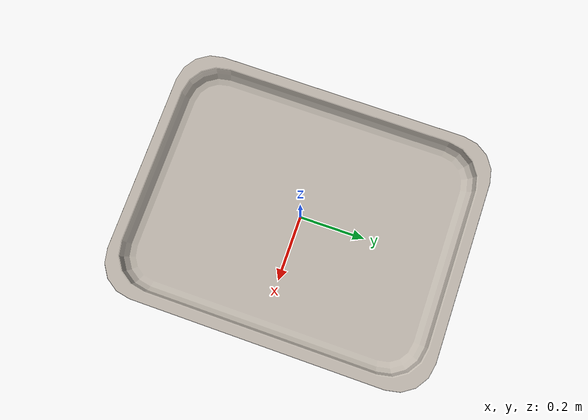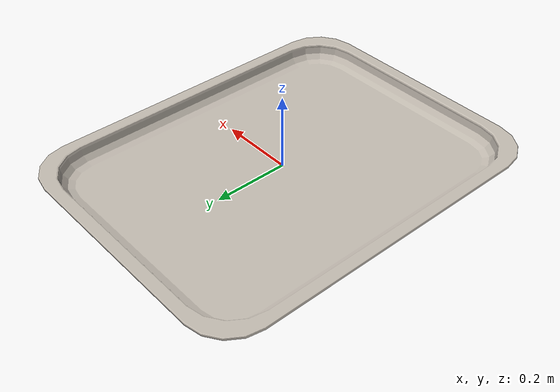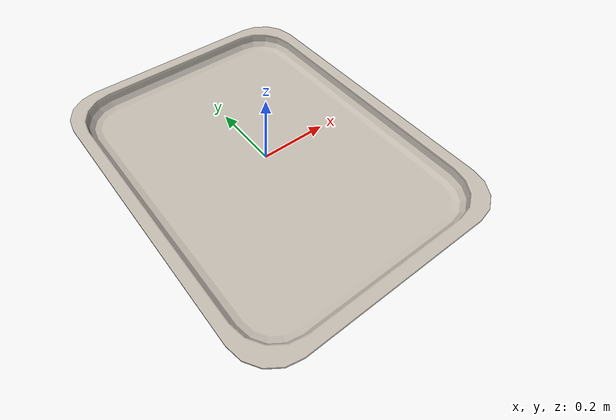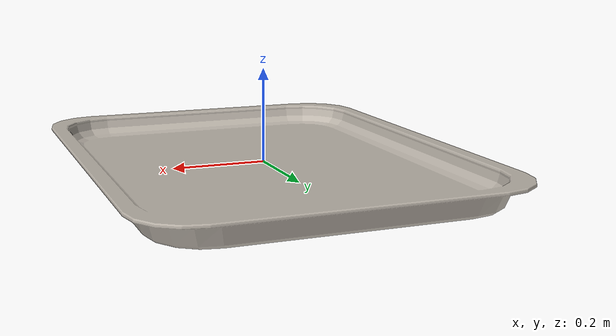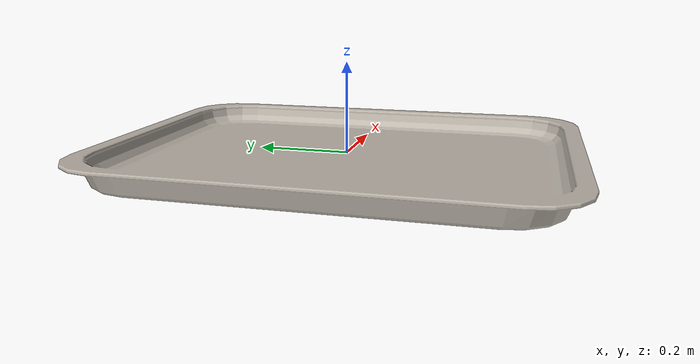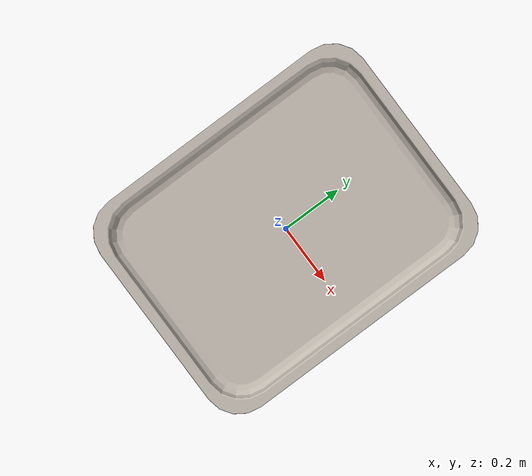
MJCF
<mujoco model="metal_tray">
  <asset>
  <texture file="visual/ceramic.png" name="tex-metal_tray" type="2d" />
  <material name="metal_tray" reflectance="0.5" texrepeat="1 1" texture="tex-metal_tray" texuniform="false" />
  <mesh file="visual/model_normalized_0.obj" name="model_normalized_0_vis" scale="1.0 1.0 1.0" /><mesh file="collision/model_normalized_collision_22.obj" name="model_normalized_collision_22._coll" scale="1.0 1.0 1.0" /><mesh file="collision/model_normalized_collision_23.obj" name="model_normalized_collision_23._coll" scale="1.0 1.0 1.0" /><mesh file="collision/model_normalized_collision_21.obj" name="model_normalized_collision_21._coll" scale="1.0 1.0 1.0" /><mesh file="collision/model_normalized_collision_20.obj" name="model_normalized_collision_20._coll" scale="1.0 1.0 1.0" /><mesh file="collision/model_normalized_collision_24.obj" name="model_normalized_collision_24._coll" scale="1.0 1.0 1.0" /><mesh file="collision/model_normalized_collision_30.obj" name="model_normalized_collision_30._coll" scale="1.0 1.0 1.0" /><mesh file="collision/model_normalized_collision_18.obj" name="model_normalized_collision_18._coll" scale="1.0 1.0 1.0" /><mesh file="collision/model_normalized_collision_19.obj" name="model_normalized_collision_19._coll" scale="1.0 1.0 1.0" /><mesh file="collision/model_normalized_collision_31.obj" name="model_normalized_collision_31._coll" scale="1.0 1.0 1.0" /><mesh file="collision/model_normalized_collision_25.obj" name="model_normalized_collision_25._coll" scale="1.0 1.0 1.0" /><mesh file="collision/model_normalized_collision_27.obj" name="model_normalized_collision_27._coll" scale="1.0 1.0 1.0" /><mesh file="collision/model_normalized_collision_26.obj" name="model_normalized_collision_26._coll" scale="1.0 1.0 1.0" /><mesh file="collision/model_normalized_collision_9.obj" name="model_normalized_collision_9._coll" scale="1.0 1.0 1.0" /><mesh file="collision/model_normalized_collision_8.obj" name="model_normalized_collision_8._coll" scale="1.0 1.0 1.0" /><mesh file="collision/model_normalized_collision_6.obj" name="model_normalized_collision_6._coll" scale="1.0 1.0 1.0" /><mesh file="collision/model_normalized_collision_7.obj" name="model_normalized_collision_7._coll" scale="1.0 1.0 1.0" /><mesh file="collision/model_normalized_collision_5.obj" name="model_normalized_collision_5._coll" scale="1.0 1.0 1.0" /><mesh file="collision/model_normalized_collision_4.obj" name="model_normalized_collision_4._coll" scale="1.0 1.0 1.0" /><mesh file="collision/model_normalized_collision_0.obj" name="model_normalized_collision_0._coll" scale="1.0 1.0 1.0" /><mesh file="collision/model_normalized_collision_1.obj" name="model_normalized_collision_1._coll" scale="1.0 1.0 1.0" /><mesh file="collision/model_normalized_collision_3.obj" name="model_normalized_collision_3._coll" scale="1.0 1.0 1.0" /><mesh file="collision/model_normalized_collision_2.obj" name="model_normalized_collision_2._coll" scale="1.0 1.0 1.0" /><mesh file="collision/model_normalized_collision_17.obj" name="model_normalized_collision_17._coll" scale="1.0 1.0 1.0" /><mesh file="collision/model_normalized_collision_16.obj" name="model_normalized_collision_16._coll" scale="1.0 1.0 1.0" /><mesh file="collision/model_normalized_collision_28.obj" name="model_normalized_collision_28._coll" scale="1.0 1.0 1.0" /><mesh file="collision/model_normalized_collision_14.obj" name="model_normalized_collision_14._coll" scale="1.0 1.0 1.0" /><mesh file="collision/model_normalized_collision_15.obj" name="model_normalized_collision_15._coll" scale="1.0 1.0 1.0" /><mesh file="collision/model_normalized_collision_29.obj" name="model_normalized_collision_29._coll" scale="1.0 1.0 1.0" /><mesh file="collision/model_normalized_collision_11.obj" name="model_normalized_collision_11._coll" scale="1.0 1.0 1.0" /><mesh file="collision/model_normalized_collision_10.obj" name="model_normalized_collision_10._coll" scale="1.0 1.0 1.0" /><mesh file="collision/model_normalized_collision_12.obj" name="model_normalized_collision_12._coll" scale="1.0 1.0 1.0" /><mesh file="collision/model_normalized_collision_13.obj" name="model_normalized_collision_13._coll" scale="1.0 1.0 1.0" /><texture type="2d" name="material_0" file="visual/material_0.png" /><material name="material_0" texture="material_0" specular="0.4000000000000001" shininess="0.001" /></asset>
  <worldbody>
    <body>
      <body name="object">
      <geom solimp="0.998 0.998 0.001" solref="0.001 1" density="100" friction="0.95 0.3 0.1" type="mesh" mesh="model_normalized_0_vis" conaffinity="0" contype="0" group="1" material="material_0" /><geom solimp="0.998 0.998 0.001" solref="0.001 1" density="100" friction="0.95 0.3 0.1" type="mesh" mesh="model_normalized_collision_22._coll" group="0" rgba="0.8 0.8 0.8 0.0" /><geom solimp="0.998 0.998 0.001" solref="0.001 1" density="100" friction="0.95 0.3 0.1" type="mesh" mesh="model_normalized_collision_23._coll" group="0" rgba="0.8 0.8 0.8 0.0" /><geom solimp="0.998 0.998 0.001" solref="0.001 1" density="100" friction="0.95 0.3 0.1" type="mesh" mesh="model_normalized_collision_21._coll" group="0" rgba="0.8 0.8 0.8 0.0" /><geom solimp="0.998 0.998 0.001" solref="0.001 1" density="100" friction="0.95 0.3 0.1" type="mesh" mesh="model_normalized_collision_20._coll" group="0" rgba="0.8 0.8 0.8 0.0" /><geom solimp="0.998 0.998 0.001" solref="0.001 1" density="100" friction="0.95 0.3 0.1" type="mesh" mesh="model_normalized_collision_24._coll" group="0" rgba="0.8 0.8 0.8 0.0" /><geom solimp="0.998 0.998 0.001" solref="0.001 1" density="100" friction="0.95 0.3 0.1" type="mesh" mesh="model_normalized_collision_30._coll" group="0" rgba="0.8 0.8 0.8 0.0" /><geom solimp="0.998 0.998 0.001" solref="0.001 1" density="100" friction="0.95 0.3 0.1" type="mesh" mesh="model_normalized_collision_18._coll" group="0" rgba="0.8 0.8 0.8 0.0" /><geom solimp="0.998 0.998 0.001" solref="0.001 1" density="100" friction="0.95 0.3 0.1" type="mesh" mesh="model_normalized_collision_19._coll" group="0" rgba="0.8 0.8 0.8 0.0" /><geom solimp="0.998 0.998 0.001" solref="0.001 1" density="100" friction="0.95 0.3 0.1" type="mesh" mesh="model_normalized_collision_31._coll" group="0" rgba="0.8 0.8 0.8 0.0" /><geom solimp="0.998 0.998 0.001" solref="0.001 1" density="100" friction="0.95 0.3 0.1" type="mesh" mesh="model_normalized_collision_25._coll" group="0" rgba="0.8 0.8 0.8 0.0" /><geom solimp="0.998 0.998 0.001" solref="0.001 1" density="100" friction="0.95 0.3 0.1" type="mesh" mesh="model_normalized_collision_27._coll" group="0" rgba="0.8 0.8 0.8 0.0" /><geom solimp="0.998 0.998 0.001" solref="0.001 1" density="100" friction="0.95 0.3 0.1" type="mesh" mesh="model_normalized_collision_26._coll" group="0" rgba="0.8 0.8 0.8 0.0" /><geom solimp="0.998 0.998 0.001" solref="0.001 1" density="100" friction="0.95 0.3 0.1" type="mesh" mesh="model_normalized_collision_9._coll" group="0" rgba="0.8 0.8 0.8 0.0" /><geom solimp="0.998 0.998 0.001" solref="0.001 1" density="100" friction="0.95 0.3 0.1" type="mesh" mesh="model_normalized_collision_8._coll" group="0" rgba="0.8 0.8 0.8 0.0" /><geom solimp="0.998 0.998 0.001" solref="0.001 1" density="100" friction="0.95 0.3 0.1" type="mesh" mesh="model_normalized_collision_6._coll" group="0" rgba="0.8 0.8 0.8 0.0" /><geom solimp="0.998 0.998 0.001" solref="0.001 1" density="100" friction="0.95 0.3 0.1" type="mesh" mesh="model_normalized_collision_7._coll" group="0" rgba="0.8 0.8 0.8 0.0" /><geom solimp="0.998 0.998 0.001" solref="0.001 1" density="100" friction="0.95 0.3 0.1" type="mesh" mesh="model_normalized_collision_5._coll" group="0" rgba="0.8 0.8 0.8 0.0" /><geom solimp="0.998 0.998 0.001" solref="0.001 1" density="100" friction="0.95 0.3 0.1" type="mesh" mesh="model_normalized_collision_4._coll" group="0" rgba="0.8 0.8 0.8 0.0" /><geom solimp="0.998 0.998 0.001" solref="0.001 1" density="100" friction="0.95 0.3 0.1" type="mesh" mesh="model_normalized_collision_0._coll" group="0" rgba="0.8 0.8 0.8 0.0" /><geom solimp="0.998 0.998 0.001" solref="0.001 1" density="100" friction="0.95 0.3 0.1" type="mesh" mesh="model_normalized_collision_1._coll" group="0" rgba="0.8 0.8 0.8 0.0" /><geom solimp="0.998 0.998 0.001" solref="0.001 1" density="100" friction="0.95 0.3 0.1" type="mesh" mesh="model_normalized_collision_3._coll" group="0" rgba="0.8 0.8 0.8 0.0" /><geom solimp="0.998 0.998 0.001" solref="0.001 1" density="100" friction="0.95 0.3 0.1" type="mesh" mesh="model_normalized_collision_2._coll" group="0" rgba="0.8 0.8 0.8 0.0" /><geom solimp="0.998 0.998 0.001" solref="0.001 1" density="100" friction="0.95 0.3 0.1" type="mesh" mesh="model_normalized_collision_17._coll" group="0" rgba="0.8 0.8 0.8 0.0" /><geom solimp="0.998 0.998 0.001" solref="0.001 1" density="100" friction="0.95 0.3 0.1" type="mesh" mesh="model_normalized_collision_16._coll" group="0" rgba="0.8 0.8 0.8 0.0" /><geom solimp="0.998 0.998 0.001" solref="0.001 1" density="100" friction="0.95 0.3 0.1" type="mesh" mesh="model_normalized_collision_28._coll" group="0" rgba="0.8 0.8 0.8 0.0" /><geom solimp="0.998 0.998 0.001" solref="0.001 1" density="100" friction="0.95 0.3 0.1" type="mesh" mesh="model_normalized_collision_14._coll" group="0" rgba="0.8 0.8 0.8 0.0" /><geom solimp="0.998 0.998 0.001" solref="0.001 1" density="100" friction="0.95 0.3 0.1" type="mesh" mesh="model_normalized_collision_15._coll" group="0" rgba="0.8 0.8 0.8 0.0" /><geom solimp="0.998 0.998 0.001" solref="0.001 1" density="100" friction="0.95 0.3 0.1" type="mesh" mesh="model_normalized_collision_29._coll" group="0" rgba="0.8 0.8 0.8 0.0" /><geom solimp="0.998 0.998 0.001" solref="0.001 1" density="100" friction="0.95 0.3 0.1" type="mesh" mesh="model_normalized_collision_11._coll" group="0" rgba="0.8 0.8 0.8 0.0" /><geom solimp="0.998 0.998 0.001" solref="0.001 1" density="100" friction="0.95 0.3 0.1" type="mesh" mesh="model_normalized_collision_10._coll" group="0" rgba="0.8 0.8 0.8 0.0" /><geom solimp="0.998 0.998 0.001" solref="0.001 1" density="100" friction="0.95 0.3 0.1" type="mesh" mesh="model_normalized_collision_12._coll" group="0" rgba="0.8 0.8 0.8 0.0" /><geom solimp="0.998 0.998 0.001" solref="0.001 1" density="100" friction="0.95 0.3 0.1" type="mesh" mesh="model_normalized_collision_13._coll" group="0" rgba="0.8 0.8 0.8 0.0" /></body>
      <site rgba="0 0 0 0" size="0.005" pos="0.0035688436286031577 -1.551791978249284e-08 -0.03791532266198909" name="bottom_site" />
      <site rgba="0 0 0 0" size="0.005" pos="0.0035688436286031577 -1.551791978249284e-08 0.03784225301008849" name="top_site" />
      <site rgba="0 0 0 0" size="0.005" pos="0.40508399215131835 0.5075757383814159 -3.653482595030247e-05" name="horizontal_radius_site" />
    </body>
  </worldbody>
</mujoco>
